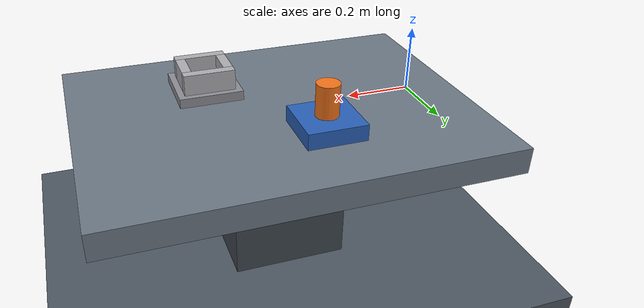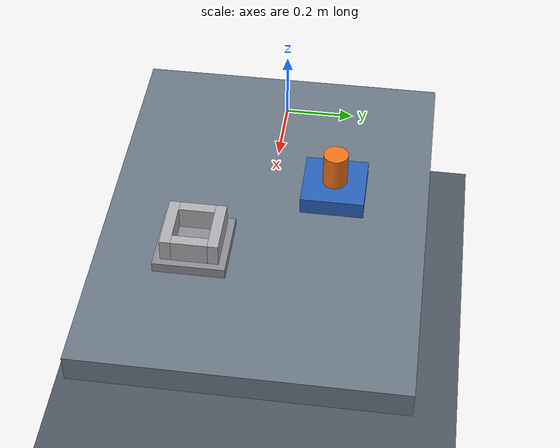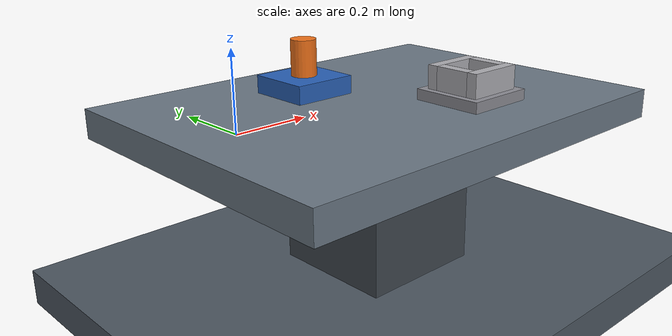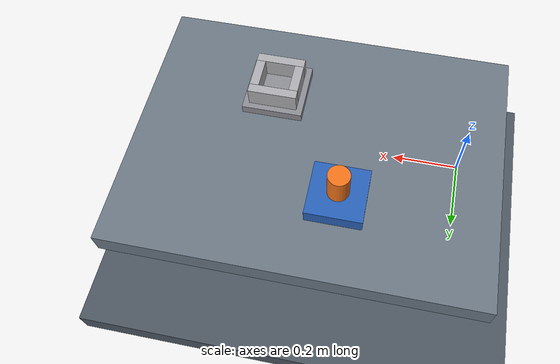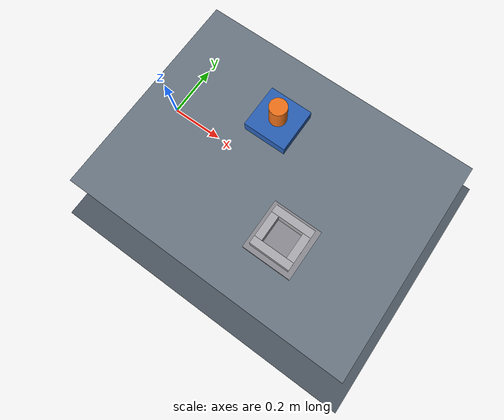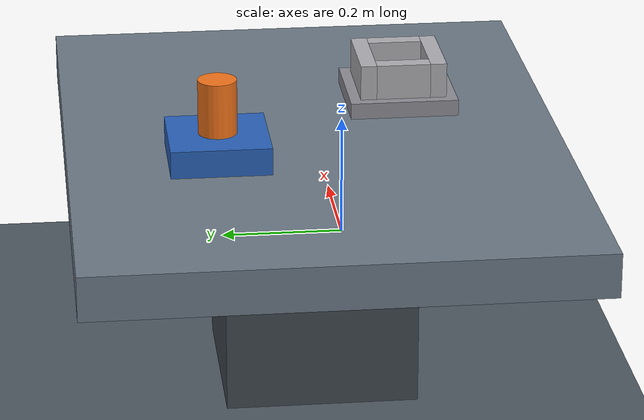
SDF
<?xml version="1.0" ?>
<sdf version="1.10">
  <world name="adaptive_assembly_physical_workcell">
    <gravity>0 0 -9.81</gravity>
    <scene>
      <ambient>0.35 0.35 0.35 1</ambient>
      <background>0.75 0.82 0.90 1</background>
    </scene>

    <plugin filename="gz-sim-physics-system" name="gz::sim::systems::Physics"/>
    <plugin filename="gz-sim-user-commands-system" name="gz::sim::systems::UserCommands"/>
    <plugin filename="gz-sim-scene-broadcaster-system" name="gz::sim::systems::SceneBroadcaster"/>
    <plugin filename="gz-sim-contact-system" name="gz::sim::systems::Contact"/>

    <light name="workcell_sun" type="directional">
      <cast_shadows>true</cast_shadows>
      <pose>0 0 5 0 0 0</pose>
      <diffuse>0.9 0.9 0.9 1</diffuse>
      <specular>0.2 0.2 0.2 1</specular>
      <direction>-0.4 0.3 -1.0</direction>
    </light>

    <model name="workcell_floor">
      <static>true</static>
      <link name="floor_link">
        <pose>0 0 -0.51 0 0 0</pose>
        <collision name="floor_collision">
          <geometry><box><size>4.0 4.0 0.1</size></box></geometry>
        </collision>
        <visual name="floor_visual">
          <geometry><box><size>4.0 4.0 0.1</size></box></geometry>
          <material><ambient>0.22 0.25 0.28 1</ambient><diffuse>0.30 0.34 0.38 1</diffuse></material>
        </visual>
      </link>
    </model>

    <model name="work_table">
      <static>true</static>
      <link name="work_surface_link">
        <pose>0.45 0 -0.04 0 0 0</pose>
        <collision name="work_surface_collision">
          <geometry><box><size>1.2 0.9 0.08</size></box></geometry>
        </collision>
        <visual name="work_surface_visual">
          <geometry><box><size>1.2 0.9 0.08</size></box></geometry>
          <material><ambient>0.30 0.34 0.38 1</ambient><diffuse>0.42 0.47 0.52 1</diffuse></material>
        </visual>
      </link>
      <link name="table_pedestal_link">
        <pose>0.45 0 -0.27 0 0 0</pose>
        <collision name="table_pedestal_collision">
          <geometry><box><size>0.35 0.35 0.38</size></box></geometry>
        </collision>
        <visual name="table_pedestal_visual">
          <geometry><box><size>0.35 0.35 0.38</size></box></geometry>
          <material><ambient>0.18 0.20 0.22 1</ambient><diffuse>0.25 0.28 0.31 1</diffuse></material>
        </visual>
      </link>
    </model>

    <model name="target_support">
      <static>true</static>
      <pose>0.35 0.18 0 0 0 0</pose>
      <link name="target_support_link">
        <pose>0 0 0.025 0 0 0</pose>
        <collision name="target_support_collision">
          <geometry><box><size>0.18 0.18 0.05</size></box></geometry>
        </collision>
        <visual name="target_support_visual">
          <geometry><box><size>0.18 0.18 0.05</size></box></geometry>
          <material><ambient>0.12 0.28 0.52 1</ambient><diffuse>0.16 0.38 0.72 1</diffuse></material>
        </visual>
      </link>
    </model>

    <model name="target_object">
      <static>false</static>
      <pose>0.35 0.18 0.10 0 0 0</pose>
      <plugin filename="gz-sim-pose-publisher-system" name="gz::sim::systems::PosePublisher">
        <publish_link_pose>false</publish_link_pose>
        <publish_visual_pose>false</publish_visual_pose>
        <publish_collision_pose>false</publish_collision_pose>
        <publish_sensor_pose>false</publish_sensor_pose>
        <publish_nested_model_pose>false</publish_nested_model_pose>
        <publish_model_pose>true</publish_model_pose>
        <use_pose_vector_msg>false</use_pose_vector_msg>
        <update_frequency>30</update_frequency>
      </plugin>
      <link name="target_object_link">
        <inertial>
          <mass>0.08</mass>
          <inertia>
            <ixx>0.00008</ixx>
            <iyy>0.00008</iyy>
            <izz>0.00008</izz>
          </inertia>
        </inertial>
        <collision name="target_object_collision">
          <geometry><cylinder><radius>0.035</radius><length>0.10</length></cylinder></geometry>
          <surface>
            <friction>
              <ode>
                <mu>1.0</mu>
                <mu2>1.0</mu2>
              </ode>
            </friction>
          </surface>
        </collision>
        <visual name="target_object_visual">
          <geometry><cylinder><radius>0.035</radius><length>0.10</length></cylinder></geometry>
          <material><ambient>0.80 0.34 0.08 1</ambient><diffuse>0.95 0.45 0.10 1</diffuse></material>
        </visual>
      </link>
    </model>

    <model name="assembly_socket_fixture">
      <static>true</static>
      <pose>0.62 -0.18 0 0 0 0</pose>
      <link name="socket_base_link">
        <pose>0 0 0.015 0 0 0</pose>
        <collision name="socket_base_collision">
          <geometry><box><size>0.20 0.20 0.03</size></box></geometry>
        </collision>
        <visual name="socket_base_visual">
          <geometry><box><size>0.20 0.20 0.03</size></box></geometry>
          <material><ambient>0.38 0.38 0.40 1</ambient><diffuse>0.55 0.55 0.58 1</diffuse></material>
        </visual>
      </link>
      <link name="socket_left_wall_link">
        <pose>0 0.065 0.055 0 0 0</pose>
        <collision name="socket_left_wall_collision">
          <geometry><box><size>0.16 0.03 0.08</size></box></geometry>
        </collision>
        <visual name="socket_left_wall_visual">
          <geometry><box><size>0.16 0.03 0.08</size></box></geometry>
          <material><ambient>0.50 0.50 0.52 1</ambient><diffuse>0.68 0.68 0.70 1</diffuse></material>
        </visual>
      </link>
      <link name="socket_right_wall_link">
        <pose>0 -0.065 0.055 0 0 0</pose>
        <collision name="socket_right_wall_collision">
          <geometry><box><size>0.16 0.03 0.08</size></box></geometry>
        </collision>
        <visual name="socket_right_wall_visual">
          <geometry><box><size>0.16 0.03 0.08</size></box></geometry>
          <material><ambient>0.50 0.50 0.52 1</ambient><diffuse>0.68 0.68 0.70 1</diffuse></material>
        </visual>
      </link>
      <link name="socket_back_wall_link">
        <pose>-0.065 0 0.055 0 0 0</pose>
        <collision name="socket_back_wall_collision">
          <geometry><box><size>0.03 0.10 0.08</size></box></geometry>
        </collision>
        <visual name="socket_back_wall_visual">
          <geometry><box><size>0.03 0.10 0.08</size></box></geometry>
          <material><ambient>0.50 0.50 0.52 1</ambient><diffuse>0.68 0.68 0.70 1</diffuse></material>
        </visual>
      </link>
      <link name="socket_front_wall_link">
        <pose>0.065 0 0.055 0 0 0</pose>
        <collision name="socket_front_wall_collision">
          <geometry><box><size>0.03 0.10 0.08</size></box></geometry>
        </collision>
        <visual name="socket_front_wall_visual">
          <geometry><box><size>0.03 0.10 0.08</size></box></geometry>
          <material><ambient>0.50 0.50 0.52 1</ambient><diffuse>0.68 0.68 0.70 1</diffuse></material>
        </visual>
      </link>
    </model>
  </world>
</sdf>
